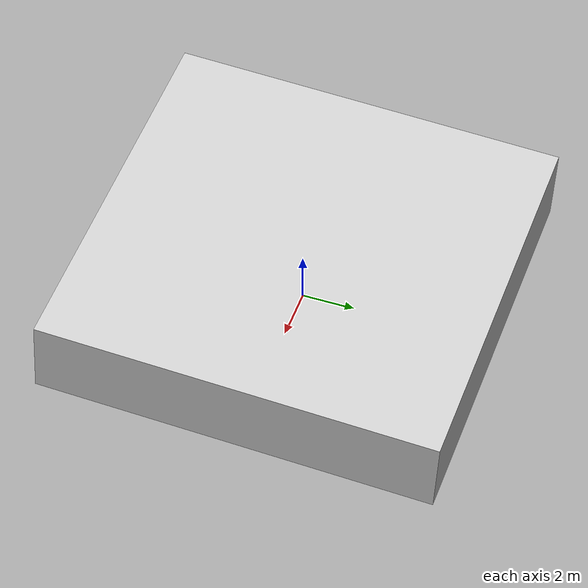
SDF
<?xml version="1.0"?>
<sdf version="1.7">
<world name="apartment">

  <include>
    <uri>model://sun</uri>
  </include>

  <scene>
    <ambient>0.7 0.7 0.7 1</ambient>
    <background>0.85 0.85 0.9 1</background>
    <shadows>true</shadows>
  </scene>

  <physics type="ode">
    <real_time_factor>1.0</real_time_factor>
    <real_time_update_rate>1000</real_time_update_rate>
    <max_step_size>0.001</max_step_size>
    <gravity>0 0 -9.81</gravity>
  </physics>

  <!-- ==========================================
       FENÊTRE SALON (2×1.5 m)
       ========================================== -->
  <model name="window_living_room">
    <pose>0 0 1.2 0 0 0</pose>
    <static>true</static>
    <link name="glass">
      <collision name="collision">
        <geometry>
          <box><size>2.0 1.5 0.01</size></box>
        </geometry>
        <surface>
          <friction>
            <ode><mu>0.1</mu><mu2>0.1</mu2></ode>
          </friction>
        </surface>
      </collision>
      <visual name="visual">
        <geometry>
          <box><size>2.0 1.5 0.01</size></box>
        </geometry>
        <material>
          <transparency>0.3</transparency>
          <ambient>0.9 0.9 1.0 0.5</ambient>
        </material>
      </visual>
      <inertial>
        <mass>37.5</mass>
        <inertia>
          <ixx>7.03</ixx>
          <iyy>12.5</iyy>
          <izz>19.53</izz>
        </inertia>
      </inertial>
    </link>
  </model>

  <!-- ==========================================
       FENÊTRE CHAMBRE 1 (1.5×1.2 m)
       ========================================== -->
  <model name="window_bedroom_1">
    <pose>3 0 1.0 0 0 0</pose>
    <static>true</static>
    <link name="glass">
      <collision name="collision">
        <geometry>
          <box><size>1.5 1.2 0.01</size></box>
        </geometry>
        <surface>
          <friction>
            <ode><mu>0.1</mu><mu2>0.1</mu2></ode>
          </friction>
        </surface>
      </collision>
      <visual name="visual">
        <geometry>
          <box><size>1.5 1.2 0.01</size></box>
        </geometry>
        <material>
          <transparency>0.3</transparency>
          <ambient>0.9 0.9 1.0 0.5</ambient>
        </material>
      </visual>
      <inertial>
        <mass>18.0</mass>
        <inertia>
          <ixx>2.16</ixx>
          <iyy>3.38</iyy>
          <izz>5.54</izz>
        </inertia>
      </inertial>
    </link>
  </model>

  <!-- ==========================================
       FENÊTRE CHAMBRE 2 (1.5×1.2 m)
       ========================================== -->
  <model name="window_bedroom_2">
    <pose>-3 0 1.0 0 0 0</pose>
    <static>true</static>
    <link name="glass">
      <collision name="collision">
        <geometry>
          <box><size>1.5 1.2 0.01</size></box>
        </geometry>
        <surface>
          <friction>
            <ode><mu>0.1</mu><mu2>0.1</mu2></ode>
          </friction>
        </surface>
      </collision>
      <visual name="visual">
        <geometry>
          <box><size>1.5 1.2 0.01</size></box>
        </geometry>
        <material>
          <transparency>0.3</transparency>
          <ambient>0.9 0.9 1.0 0.5</ambient>
        </material>
      </visual>
      <inertial>
        <mass>18.0</mass>
        <inertia>
          <ixx>2.16</ixx>
          <iyy>3.38</iyy>
          <izz>5.54</izz>
        </inertia>
      </inertial>
    </link>
  </model>

  <!-- ==========================================
       BAIE VITRÉE CUISINE (3×2 m)
       ========================================== -->
  <model name="window_kitchen">
    <pose>0 4 1.5 0 0 0</pose>
    <static>true</static>
    <link name="glass">
      <collision name="collision">
        <geometry>
          <box><size>3.0 2.0 0.01</size></box>
        </geometry>
        <surface>
          <friction>
            <ode><mu>0.1</mu><mu2>0.1</mu2></ode>
          </friction>
        </surface>
      </collision>
      <visual name="visual">
        <geometry>
          <box><size>3.0 2.0 0.01</size></box>
        </geometry>
        <material>
          <transparency>0.3</transparency>
          <ambient>0.9 0.9 1.0 0.5</ambient>
        </material>
      </visual>
      <inertial>
        <mass>60.0</mass>
        <inertia>
          <ixx>20.0</ixx>
          <iyy>45.0</iyy>
          <izz>65.0</izz>
        </inertia>
      </inertial>
    </link>
  </model>

  <!-- ==========================================
       FENÊTRE SALLE DE BAIN (0.8×0.6 m)
       ========================================== -->
  <model name="window_bathroom">
    <pose>0 -4 1.0 0 0 0</pose>
    <static>true</static>
    <link name="glass">
      <collision name="collision">
        <geometry>
          <box><size>0.8 0.6 0.01</size></box>
        </geometry>
        <surface>
          <friction>
            <ode><mu>0.1</mu><mu2>0.1</mu2></ode>
          </friction>
        </surface>
      </collision>
      <visual name="visual">
        <geometry>
          <box><size>0.8 0.6 0.01</size></box>
        </geometry>
        <material>
          <transparency>0.3</transparency>
          <ambient>0.9 0.9 1.0 0.5</ambient>
        </material>
      </visual>
      <inertial>
        <mass>3.6</mass>
        <inertia>
          <ixx>0.108</ixx>
          <iyy>0.192</iyy>
          <izz>0.3</izz>
        </inertia>
      </inertial>
    </link>
  </model>

  <!-- Murs de support -->
  <model name="wall_background">
    <pose>0 0 1.5 -0.05 0 0</pose>
    <static>true</static>
    <link name="wall">
      <collision name="collision">
        <geometry>
          <box><size>15 15 3</size></box>
        </geometry>
      </collision>
      <visual name="visual">
        <geometry>
          <box><size>15 15 3</size></box>
        </geometry>
        <material>
          <ambient>0.8 0.8 0.8 1</ambient>
        </material>
      </visual>
    </link>
  </model>

  <light type="directional" name="apartment_light">
    <pose>0 0 5 0.3 -0.3 -1</pose>
    <diffuse>0.85 0.85 0.8 1</diffuse>
    <cast_shadows>true</cast_shadows>
  </light>

</world>
</sdf>
